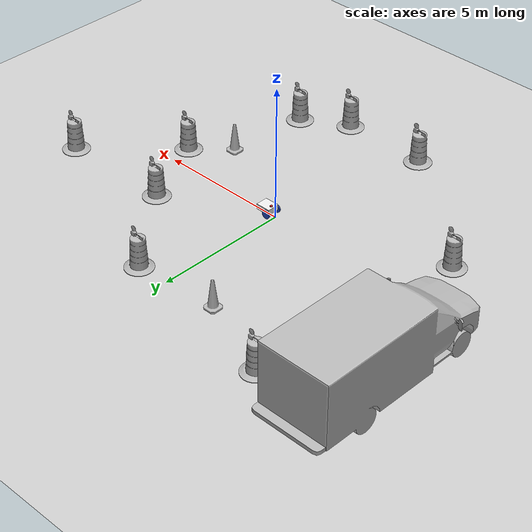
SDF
<sdf version="1.7">
 <world name="default">
  <light name="sun" type="directional">
   <pose>0 0 10 0 -0 0</pose>
   <diffuse>0.8 0.8 0.8 1</diffuse>
   <specular>0.2 0.2 0.2 1</specular>
   <attenuation>
    <range>1000</range>
    <constant>0.9</constant>
    <linear>0.01</linear>
    <quadratic>0.001</quadratic>
   </attenuation>
   <direction>-0.5 0.1 -0.9</direction>
   <spot><inner_angle>0</inner_angle><outer_angle>0</outer_angle><falloff>0</falloff></spot>
  </light>
  <model name="ground_plane">
   <static>1</static>
   <link name="link">
    <collision name="collision">
     <geometry><plane><normal>0 0 1</normal><size>100 100</size></plane></geometry>
     <surface>
      <contact><collide_bitmask>65535</collide_bitmask></contact>
      <friction><ode><mu>100</mu><mu2>50</mu2></ode></friction>
     </surface>
    </collision>
    <visual name="visual">
     <cast_shadows>0</cast_shadows>
     <geometry><plane><normal>0 0 1</normal><size>100 100</size></plane></geometry>
     <material>
      <script><uri>file://media/materials/scripts/gazebo.material</uri><name>Gazebo/Grey</name></script>
     </material>
    </visual>
   </link>
  </model>
  <gravity>0 0 -9.8</gravity>
  <magnetic_field>6e-06 2.3e-05 -4.2e-05</magnetic_field>
  <atmosphere type="adiabatic"/>
  <physics type="ode">
   <max_step_size>0.001</max_step_size>
   <real_time_factor>1</real_time_factor>
   <real_time_update_rate>1000</real_time_update_rate>
  </physics>
  <scene><ambient>0.4 0.4 0.4 1</ambient><background>0.7 0.7 0.7 1</background><shadows>1</shadows></scene>
  <spherical_coordinates>
   <surface_model>EARTH_WGS84</surface_model>
   <latitude_deg>0</latitude_deg>
   <longitude_deg>0</longitude_deg>
   <elevation>0</elevation>
   <heading_deg>0</heading_deg>
  </spherical_coordinates>
  <model name="my_bot">
   <link name="base_link">
    <inertial>
     <pose>0.237838 0 0.046937 0 -0 0</pose>
     <mass>11.1</mass>
     <inertia>
      <ixx>0.169352</ixx>
      <ixy>0</ixy>
      <ixz>0.0999135</ixz>
      <iyy>0.28066</iyy>
      <iyz>0</iyz>
      <izz>0.235753</izz>
     </inertia>
    </inertial>
    <collision name="base_link_fixed_joint_lump__chassis_collision">
     <pose>0.18 0 0.1 0 -0 0</pose>
     <geometry><box><size>0.56 0.46 0.2</size></box></geometry>
    </collision>
    <collision name="base_link_fixed_joint_lump__caster_wheel_collision_1">
     <pose>0.4 0 -0.1 0 -0 0</pose>
     <geometry><sphere><radius>0.06</radius></sphere></geometry>
     <surface><friction><ode><mu>0.0001</mu><mu2>0.0001</mu2></ode></friction></surface>
    </collision>
    <collision name="base_link_fixed_joint_lump__laser_frame_collision_2">
     <pose>0 0 0.21 0 -0 0</pose>
     <geometry><cylinder><length>0.04</length><radius>0.05</radius></cylinder></geometry>
    </collision>
    <visual name="base_link_fixed_joint_lump__chassis_visual">
     <pose>0.18 0 0.1 0 -0 0</pose>
     <geometry><box><size>0.56 0.46 0.2</size></box></geometry>
     <material>
      <script><name>Gazebo/White</name><uri>file://media/materials/scripts/gazebo.material</uri></script>
     </material>
    </visual>
    <visual name="base_link_fixed_joint_lump__caster_wheel_visual_1">
     <pose>0.4 0 -0.1 0 -0 0</pose>
     <geometry><sphere><radius>0.06</radius></sphere></geometry>
     <material>
      <script><name>Gazebo/Black</name><uri>file://media/materials/scripts/gazebo.material</uri></script>
     </material>
    </visual>
    <visual name="base_link_fixed_joint_lump__laser_frame_visual_2">
     <pose>0 0 0.21 0 -0 0</pose>
     <geometry><cylinder><length>0.04</length><radius>0.05</radius></cylinder></geometry>
     <material>
      <script><name>Gazebo/Red</name><uri>file://media/materials/scripts/gazebo.material</uri></script>
     </material>
    </visual>
    <sensor name="laser" type="ray">
     <visualize>1</visualize>
     <update_rate>10</update_rate>
     <ray>
      <scan>
       <horizontal>
        <samples>360</samples>
        <min_angle>-3.14</min_angle>
        <max_angle>3.14</max_angle>
        <resolution>1</resolution>
       </horizontal>
       <vertical><samples>1</samples><min_angle>0</min_angle><max_angle>0</max_angle></vertical>
      </scan>
      <range><min>0.3</min><max>12</max></range>
     </ray>
     <plugin name="laser_controller" filename="libgazebo_ros_ray_sensor.so">
      <ros><argument>~/out:=scan</argument></ros>
      <output_type>sensor_msgs/LaserScan</output_type>
      <frame_name>laser_frame</frame_name>
     </plugin>
     <pose>0 0 0.21 0 -0 0</pose>
    </sensor>
   </link>
   <joint name="left_wheel_joint" type="revolute">
    <pose relative_to="base_link">0 0.255 0 -1.5708 0 0</pose>
    <parent>base_link</parent>
    <child>left_wheel</child>
    <axis>
     <xyz>0 0 1</xyz>
     <limit><lower>-1e+16</lower><upper>1e+16</upper></limit>
     <dynamics><spring_reference>0</spring_reference><spring_stiffness>0</spring_stiffness></dynamics>
    </axis>
   </joint>
   <link name="left_wheel">
    <pose relative_to="left_wheel_joint">0 0 0 0 -0 0</pose>
    <inertial>
     <mass>2</mass>
     <inertia>
      <ixx>0.0133042</ixx>
      <ixy>0</ixy>
      <ixz>0</ixz>
      <iyy>0.0133042</iyy>
      <iyz>0</iyz>
      <izz>0.0256</izz>
     </inertia>
    </inertial>
    <collision name="left_wheel_collision">
     <geometry><cylinder><length>0.055</length><radius>0.16</radius></cylinder></geometry>
    </collision>
    <visual name="left_wheel_visual">
     <geometry><cylinder><length>0.055</length><radius>0.16</radius></cylinder></geometry>
     <material>
      <script><name>Gazebo/Blue</name><uri>file://media/materials/scripts/gazebo.material</uri></script>
     </material>
    </visual>
   </link>
   <joint name="right_wheel_joint" type="revolute">
    <pose relative_to="base_link">0 -0.255 0 1.5708 -0 0</pose>
    <parent>base_link</parent>
    <child>right_wheel</child>
    <axis>
     <xyz>0 0 -1</xyz>
     <limit><lower>-1e+16</lower><upper>1e+16</upper></limit>
     <dynamics><spring_reference>0</spring_reference><spring_stiffness>0</spring_stiffness></dynamics>
    </axis>
   </joint>
   <link name="right_wheel">
    <pose relative_to="right_wheel_joint">0 0 0 0 -0 0</pose>
    <inertial>
     <mass>2</mass>
     <inertia>
      <ixx>0.0133042</ixx>
      <ixy>0</ixy>
      <ixz>0</ixz>
      <iyy>0.0133042</iyy>
      <iyz>0</iyz>
      <izz>0.0256</izz>
     </inertia>
    </inertial>
    <collision name="right_wheel_collision">
     <geometry><cylinder><length>0.055</length><radius>0.16</radius></cylinder></geometry>
    </collision>
    <visual name="right_wheel_visual">
     <geometry><cylinder><length>0.055</length><radius>0.16</radius></cylinder></geometry>
     <material>
      <script><name>Gazebo/Blue</name><uri>file://media/materials/scripts/gazebo.material</uri></script>
     </material>
    </visual>
   </link>
   <static>0</static>
   <plugin name="diff_drive" filename="libgazebo_ros_diff_drive.so">
    <left_joint>left_wheel_joint</left_joint>
    <right_joint>right_wheel_joint</right_joint>
    <wheel_separation>0.35</wheel_separation>
    <wheel_diameter>0.1</wheel_diameter>
    <max_wheel_torque>200</max_wheel_torque>
    <max_wheel_acceleration>10.0</max_wheel_acceleration>
    <odometry_frame>odom</odometry_frame>
    <robot_base_frame>base_link</robot_base_frame>
    <publish_odom>1</publish_odom>
    <publish_odom_tf>1</publish_odom_tf>
    <publish_wheel_tf>1</publish_wheel_tf>
   </plugin>
   <pose>0.201908 0.000113 0.159995 1.7e-05 -1.2e-05 0.001439</pose>
  </model>
  <model name="Construction Barrel">
   <link name="link">
    <inertial>
     <pose>0 0 0.4 0 -0 0</pose>
     <mass>500</mass>
     <inertia><ixx>51.2096</ixx><iyy>51.2096</iyy><izz>25</izz><ixy>0</ixy><ixz>0</ixz><iyz>0</iyz></inertia>
    </inertial>
    <collision name="collision">
     <geometry><mesh><uri>model://construction_barrel/meshes/construction_barrel.dae</uri></mesh></geometry>
    </collision>
    <visual name="visual">
     <geometry><mesh><uri>model://construction_barrel/meshes/construction_barrel.dae</uri></mesh></geometry>
    </visual>
   </link>
   <pose>3.77314 1.96153 -1e-06 1e-06 4e-06 -2.2e-05</pose>
  </model>
  <model name="Construction Cone">
   <link name="link">
    <collision name="collision">
     <geometry>
      <mesh><scale>10 10 10</scale><uri>model://construction_cone/meshes/construction_cone.dae</uri></mesh>
     </geometry>
    </collision>
    <visual name="visual">
     <geometry>
      <mesh><scale>10 10 10</scale><uri>model://construction_cone/meshes/construction_cone.dae</uri></mesh>
     </geometry>
    </visual>
    <inertial>
     <inertia><ixx>1</ixx><ixy>0</ixy><ixz>0</ixz><iyy>1</iyy><iyz>0</iyz><izz>1</izz></inertia>
     <mass>1</mass>
    </inertial>
   </link>
   <pose>-1.96114 4.81652 -0 0 -0 0</pose>
  </model>
  <model name="ambulance">
   <static>1</static>
   <link name="link">
    <collision name="collision">
     <geometry>
      <mesh><scale>0.0254 0.0254 0.0254</scale><uri>model://ambulance/meshes/ambulance.obj</uri></mesh>
     </geometry>
    </collision>
    <visual name="visual">
     <geometry>
      <mesh><scale>0.0254 0.0254 0.0254</scale><uri>model://ambulance/meshes/ambulance.obj</uri></mesh>
     </geometry>
    </visual>
   </link>
   <pose>-7.72323 4.00093 0 0 -0 0</pose>
  </model>
  <model name="Construction Cone_0">
   <link name="link">
    <collision name="collision">
     <geometry>
      <mesh><scale>10 10 10</scale><uri>model://construction_cone/meshes/construction_cone.dae</uri></mesh>
     </geometry>
    </collision>
    <visual name="visual">
     <geometry>
      <mesh><scale>10 10 10</scale><uri>model://construction_cone/meshes/construction_cone.dae</uri></mesh>
     </geometry>
    </visual>
    <inertial>
     <inertia><ixx>1</ixx><ixy>0</ixy><ixz>0</ixz><iyy>1</iyy><iyz>0</iyz><izz>1</izz></inertia>
     <mass>1</mass>
    </inertial>
   </link>
   <pose>3.90404 -1.9289 0 -0 -0 -0</pose>
  </model>
  <model name="Construction Barrel_clone">
   <link name="link">
    <inertial>
     <pose>0 0 0.4 0 -0 0</pose>
     <mass>500</mass>
     <inertia><ixx>51.2096</ixx><iyy>51.2096</iyy><izz>25</izz><ixy>0</ixy><ixz>0</ixz><iyz>0</iyz></inertia>
    </inertial>
    <collision name="collision">
     <geometry><mesh><uri>model://construction_barrel/meshes/construction_barrel.dae</uri></mesh></geometry>
    </collision>
    <visual name="visual">
     <geometry><mesh><uri>model://construction_barrel/meshes/construction_barrel.dae</uri></mesh></geometry>
    </visual>
   </link>
   <pose>5.11977 -0.810008 -1e-06 4e-06 -2e-06 -2e-05</pose>
  </model>
  <model name="Construction Barrel_clone_0">
   <link name="link">
    <inertial>
     <pose>0 0 0.4 0 -0 0</pose>
     <mass>500</mass>
     <inertia><ixx>51.2096</ixx><iyy>51.2096</iyy><izz>25</izz><ixy>0</ixy><ixz>0</ixz><iyz>0</iyz></inertia>
    </inertial>
    <collision name="collision">
     <geometry><mesh><uri>model://construction_barrel/meshes/construction_barrel.dae</uri></mesh></geometry>
    </collision>
    <visual name="visual">
     <geometry><mesh><uri>model://construction_barrel/meshes/construction_barrel.dae</uri></mesh></geometry>
    </visual>
   </link>
   <pose>3.63923 -5.04454 -1e-06 -0 5e-06 -1.7e-05</pose>
  </model>
  <model name="Construction Barrel_clone_1">
   <link name="link">
    <inertial>
     <pose>0 0 0.4 0 -0 0</pose>
     <mass>500</mass>
     <inertia><ixx>51.2096</ixx><iyy>51.2096</iyy><izz>25</izz><ixy>0</ixy><ixz>0</ixz><iyz>0</iyz></inertia>
    </inertial>
    <collision name="collision">
     <geometry><mesh><uri>model://construction_barrel/meshes/construction_barrel.dae</uri></mesh></geometry>
    </collision>
    <visual name="visual">
     <geometry><mesh><uri>model://construction_barrel/meshes/construction_barrel.dae</uri></mesh></geometry>
    </visual>
   </link>
   <pose>1.22587 5.0412 -1e-06 3e-06 1e-05 -1.9e-05</pose>
  </model>
  <model name="Construction Barrel_clone_2">
   <link name="link">
    <inertial>
     <pose>0 0 0.4 0 -0 0</pose>
     <mass>500</mass>
     <inertia><ixx>51.2096</ixx><iyy>51.2096</iyy><izz>25</izz><ixy>0</ixy><ixz>0</ixz><iyz>0</iyz></inertia>
    </inertial>
    <collision name="collision">
     <geometry><mesh><uri>model://construction_barrel/meshes/construction_barrel.dae</uri></mesh></geometry>
    </collision>
    <visual name="visual">
     <geometry><mesh><uri>model://construction_barrel/meshes/construction_barrel.dae</uri></mesh></geometry>
    </visual>
   </link>
   <pose>7.99996 1.99999 -2e-06 2e-06 7e-06 -1.9e-05</pose>
  </model>
  <model name="Construction Barrel_clone_3">
   <link name="link">
    <inertial>
     <pose>0 0 0.4 0 -0 0</pose>
     <mass>500</mass>
     <inertia><ixx>51.2096</ixx><iyy>51.2096</iyy><izz>25</izz><ixy>0</ixy><ixz>0</ixz><iyz>0</iyz></inertia>
    </inertial>
    <collision name="collision">
     <geometry><mesh><uri>model://construction_barrel/meshes/construction_barrel.dae</uri></mesh></geometry>
    </collision>
    <visual name="visual">
     <geometry><mesh><uri>model://construction_barrel/meshes/construction_barrel.dae</uri></mesh></geometry>
    </visual>
   </link>
   <pose>2 -6.00001 -3e-06 0 -1.2e-05 -1.4e-05</pose>
  </model>
  <model name="Construction Barrel_clone_4">
   <link name="link">
    <inertial>
     <pose>0 0 0.4 0 -0 0</pose>
     <mass>500</mass>
     <inertia><ixx>51.2096</ixx><iyy>51.2096</iyy><izz>25</izz><ixy>0</ixy><ixz>0</ixz><iyz>0</iyz></inertia>
    </inertial>
    <collision name="collision">
     <geometry><mesh><uri>model://construction_barrel/meshes/construction_barrel.dae</uri></mesh></geometry>
    </collision>
    <visual name="visual">
     <geometry><mesh><uri>model://construction_barrel/meshes/construction_barrel.dae</uri></mesh></geometry>
    </visual>
   </link>
   <pose>-5.95142 -2.0031 -0 0 0 -1.3e-05</pose>
  </model>
  <model name="Construction Barrel_clone_5">
   <link name="link">
    <inertial>
     <pose>0 0 0.4 0 -0 0</pose>
     <mass>500</mass>
     <inertia><ixx>51.2096</ixx><iyy>51.2096</iyy><izz>25</izz><ixy>0</ixy><ixz>0</ixz><iyz>0</iyz></inertia>
    </inertial>
    <collision name="collision">
     <geometry><mesh><uri>model://construction_barrel/meshes/construction_barrel.dae</uri></mesh></geometry>
    </collision>
    <visual name="visual">
     <geometry><mesh><uri>model://construction_barrel/meshes/construction_barrel.dae</uri></mesh></geometry>
    </visual>
   </link>
   <pose>-5 6 -2e-06 7e-06 -2e-06 -1.2e-05</pose>
  </model>
  <model name="Construction Barrel_clone_6">
   <link name="link">
    <inertial>
     <pose>0 0 0.4 0 -0 0</pose>
     <mass>500</mass>
     <inertia><ixx>51.2096</ixx><iyy>51.2096</iyy><izz>25</izz><ixy>0</ixy><ixz>0</ixz><iyz>0</iyz></inertia>
    </inertial>
    <collision name="collision">
     <geometry><mesh><uri>model://construction_barrel/meshes/construction_barrel.dae</uri></mesh></geometry>
    </collision>
    <visual name="visual">
     <geometry><mesh><uri>model://construction_barrel/meshes/construction_barrel.dae</uri></mesh></geometry>
    </visual>
   </link>
   <pose>-1.24436 -5.93926 -1e-06 2e-06 -1e-06 -1.1e-05</pose>
  </model>
 </world>
</sdf>
